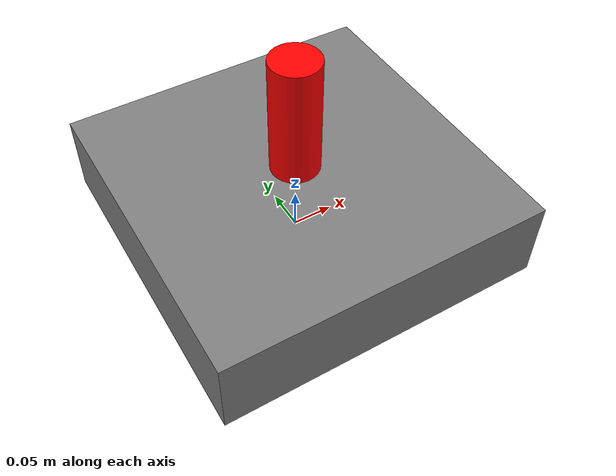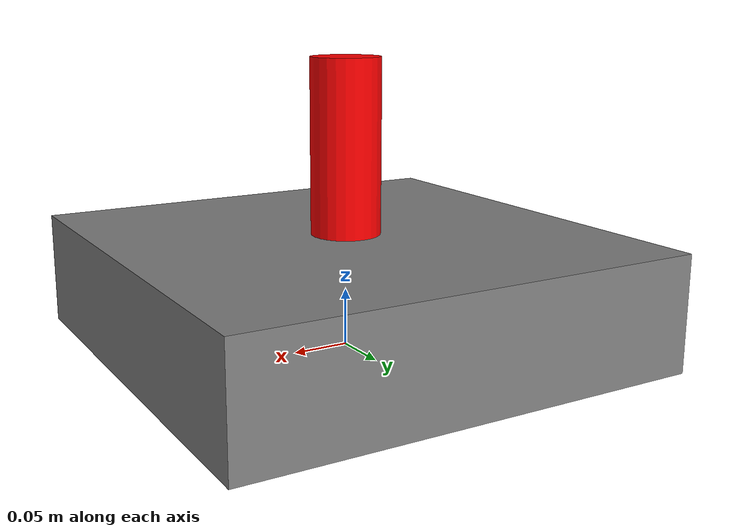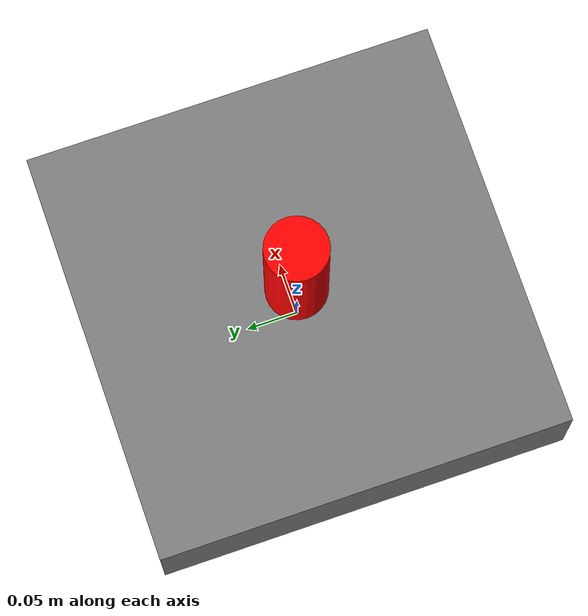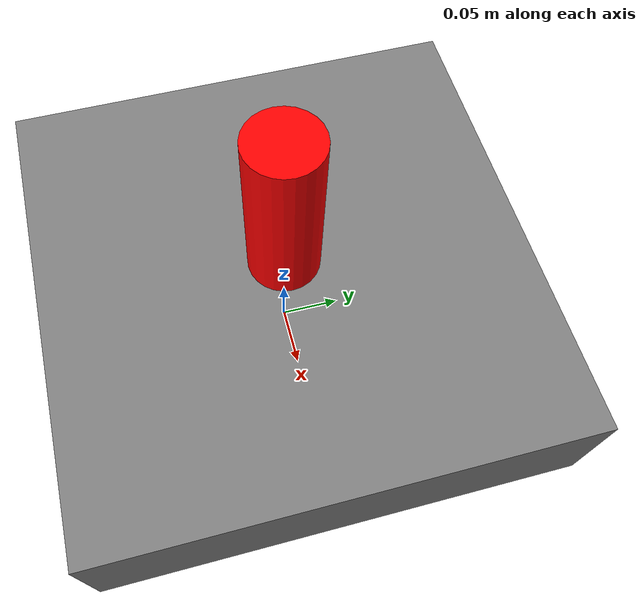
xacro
<?xml version="1.0"?>
<robot xmlns:xacro="http://wiki.ros.org/xacro">
    <!-- 1. 常量定义（方便后续修改尺寸） -->
    <xacro:property name="base_length" value="0.4" />
    <xacro:property name="base_height" value="0.1" />
    <xacro:property name="link_length" value="0.3" />
    <xacro:property name="link_radius" value="0.03" />

    <link name="map">
        <origin xyz="0 0 0" rpy="0 0 0" />
    </link>

    <joint name="map_joint" type="fixed">
        <parent link="map" />
        <child link="base_link" />
        <origin xyz="0 0 0" rpy="0 0 0" />
    </joint>

    <!-- 2.1 底座连杆（base_link） -->
    <link name="base_link">
        <visual>
            <origin xyz="0 0 ${base_height/2}" rpy="0 0 0" />
            <geometry>
                <box size="${base_length} ${base_length} ${base_height}" />
            </geometry>
            <material name="gray">
                <color rgba="0.5 0.5 0.5 1" />
            </material>
        </visual>
    </link>
    <link name="link1">
        <visual>
            <origin xyz="0 0 0" rpy="0 0 0" />
            <geometry>
                <cylinder length="${link_length}" radius="${link_radius}" />
            </geometry>
            <material name="red">
                <color rgba="1.0 0.0 0.0 1.0" />
            </material>
        </visual>
    </link>
    <joint name="base_to_link1_joint" type="revolute">
        <parent link="base_link" />
        <child link="link1" />
        <origin xyz="0 0 ${base_height}" rpy="0 0 0" />
        <axis xyz="0 0 1" />
        <limit effort="100" velocity="1" lower="${-1*pi}" upper="${pi}" />
    </joint>

</robot>
